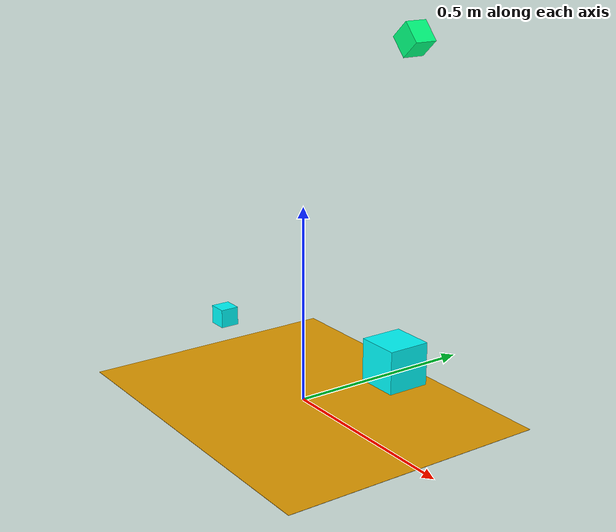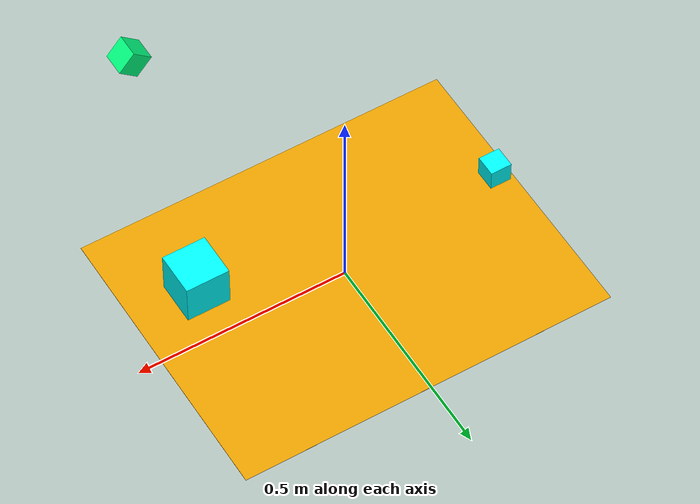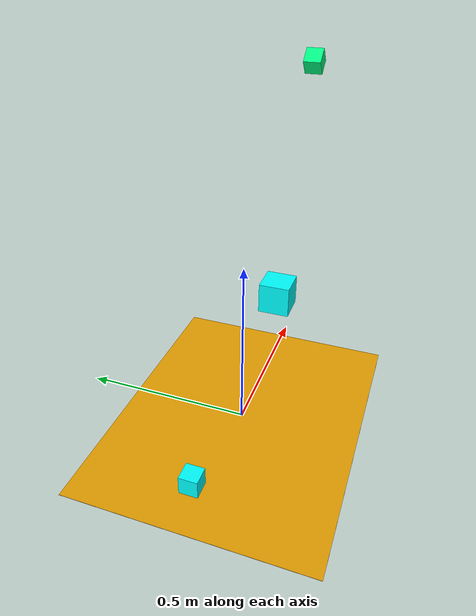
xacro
<?xml version="1.0"?>
<robot xmlns:xacro="http://ros.org/wiki/xacro"
		name="lxind">

    <!-- servo4: smaller robot -->

	<!-- const -->
	<xacro:property name="M_PI" value="3.1415926" />

	<!-- base -->
	<link name="base_footprint">
		<visual>
			<geometry>
				<box size="0.892 0.692 0.001" />
			</geometry>
		</visual>
	</link>

	<link name="base_link">
		<visual>
			<geometry>
				<box size="0.892 0.692 0.001" />
			</geometry>
			<material name="green">
				<color rgba="0 1 0 1" />
			</material>
		</visual>
	</link>

	<link name="laser_link">
		<visual>
			<geometry>
				<box size="0.1 0.1 0.1" />
			</geometry>
			<material name="gb">
				<color rgba="0 1 1 1" />
			</material>
		</visual>
	</link>
	<link name="back_laser_link">
		<visual>
			<geometry>
				<box size="0.05 0.05 0.05" />
			</geometry>
			<material name="gb">
				<color rgba="0 1 1 1" />
			</material>
		</visual>
	</link>
	<!-- tof camera -->
    <link name="lxtof_link">
        <visual>
            <geometry>
                <box size="0.05 0.05 0.05" />
            </geometry>
            <material name="g05b">
                <color rgba="0 1 0.5 1" />
            </material>
        </visual>
    </link>

<!-- JOINTS -->
	<joint name="base_joint" type="fixed">
		<origin rpy="0 0 0" xyz="0 0 0" />
		<parent link="base_footprint" />
		<child link="base_link" />
	</joint>  <!-- AT TOP SURF===> NOW: FLOOR same -->

	<joint name="base_laser_joint" type="fixed">
		<origin rpy="0 0 0" xyz="0.355 0 0.228" />   <!-- xy offset from centre of driving wheel -->
		<parent link="base_link" />
		<child link="laser_link" />
	</joint>

	<joint name="base_back_laser_joint" type="fixed">
		<origin rpy="0 0 ${M_PI}" xyz="-0.373 0 0.11" />   <!-- xy offset from centre of driving wheel -->
		<parent link="base_link" />
		<child link="back_laser_link" />
	</joint>

    <joint name="base_lxtof_joint" type="fixed">
        <origin rpy="${M_PI*0.0} ${-M_PI*0.77} ${-M_PI*1.00}" xyz="0.45 -0.05 0.95" /> <!-- around red/green/blue axis -->
            <!--  around y axis(minus ->toward ground), x(ros axis), z  ${M_PI/4} -->
        <parent link="base_link" />
        <child link="lxtof_link" />
    </joint>
</robot>
